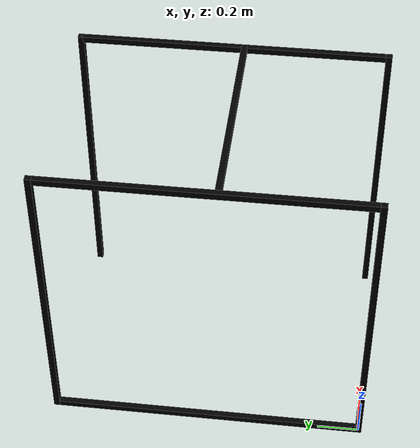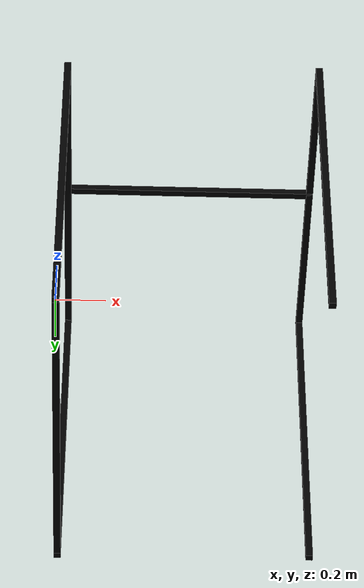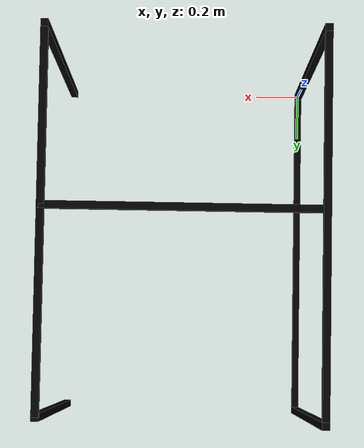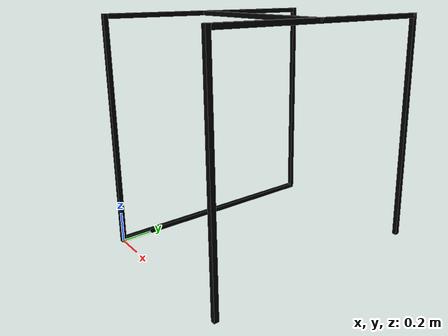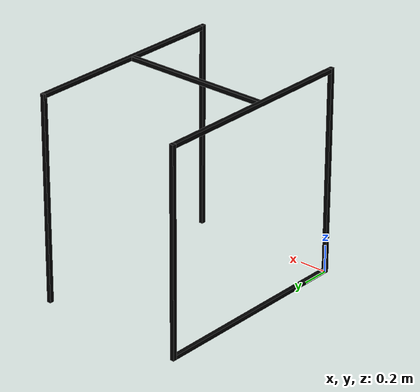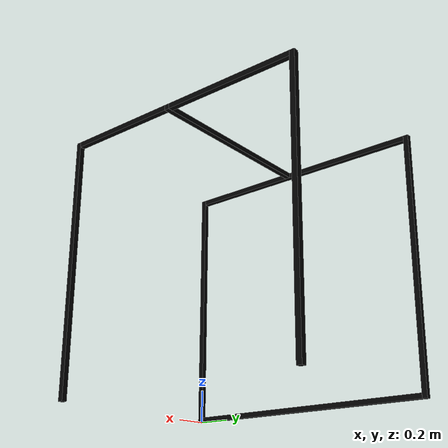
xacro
<?xml version="1.0"?>
<robot xmlns:xacro="http://www.ros.org/wiki/xacro">

  <!-- Material Definition -->
  <material name="yellow">
    <color rgba="1 1 0 1"/>
  </material>

  <material name="black">
    <color rgba="0 0 0 1"/>
  </material>

  <link name="world">
  </link>

  <link name="base_link">
    <origin xyz="0 0 0" rpy="0 0 0"/>
    <visual>
      <geometry>
        <box size="0.03 1.5 0.03"/>
      </geometry>
      <material name="black"/>
    </visual>
    <collision>
      <geometry>
        <box size="0.03 1.5 0.03"/>
      </geometry>
    </collision>
    <inertial>
      <mass value="0.5"/>
      <origin xyz="0 0 0" rpy="0 0 0"/>
      <inertia ixx="0.0937875" ixy="0" ixz="0" iyy="0.000075" iyz="0" izz="0.0937875"/>
    </inertial>
  </link>

  <link name="link1">
    <origin xyz="0 0 0" rpy="0 0 0"/>
    <visual>
      <geometry>
        <box size="0.03 0.03 1.5"/>
      </geometry>
      <material name="black"/>
    </visual>
    <collision>
      <geometry>
        <box size="0.03 0.03 1.5"/>
      </geometry>
    </collision>
    <inertial>
      <mass value="0.5"/>
      <origin rpy="0 0 0" xyz="0 0 0"/>
      <inertia ixx="0.0937875" ixy="0" ixz="0" iyy="0.0937875" iyz="0" izz="0.000075"/>
    </inertial>
  </link>

  <link name="link2">
    <origin xyz="0 0 0" rpy="0 0 0"/>
    <visual>
      <geometry>
        <box size="0.03 0.03 1.5"/>
      </geometry>
      <material name="black"/>
    </visual>
    <collision>
      <geometry>
        <box size="0.03 0.03 1.5"/>
      </geometry>
    </collision>
    <inertial>
      <mass value="0.5"/>
      <origin rpy="0 0 0" xyz="0 0 0"/>
      <inertia ixx="0.0937875" ixy="0" ixz="0" iyy="0.0937875" iyz="0" izz="0.000075"/>
    </inertial>
  </link>

  <link name="link3">
    <origin xyz="0 0 0" rpy="0 0 0"/>
    <visual>
      <geometry>
        <box size="0.03 0.03 1.5"/>
      </geometry>
      <material name="black"/>
    </visual>
    <collision>
      <geometry>
        <box size="0.03 0.03 1.5"/>
      </geometry>
    </collision>
    <inertial>
      <mass value="0.5"/>
      <origin rpy="0 0 0" xyz="0 0 0"/>
      <inertia ixx="0.0937875" ixy="0" ixz="0" iyy="0.0937875" iyz="0" izz="0.000075"/>
    </inertial>
  </link>

  <link name="link4">
    <origin xyz="0 0 0" rpy="0 0 0"/>
    <visual>
      <geometry>
        <box size="0.03 0.03 1.5"/>
      </geometry>
      <material name="black"/>
    </visual>
    <collision>
      <geometry>
        <box size="0.03 0.03 1.5"/>
      </geometry>
    </collision>
    <inertial>
      <mass value="0.5"/>
      <origin rpy="0 0 0" xyz="0 0 0"/>
      <inertia ixx="0.0937875" ixy="0" ixz="0" iyy="0.0937875" iyz="0" izz="0.000075"/>
    </inertial>
  </link>

  <link name="link5">
    <origin xyz="0 0 0" rpy="0 0 0"/>
    <visual>
      <geometry>
        <box size="0.03 1.5 0.03"/>
      </geometry>
      <material name="black"/>
    </visual>
    <collision>
      <geometry>
        <box size="0.03 1.5 0.03"/>
      </geometry>
    </collision>
    <inertial>
      <mass value="0.5"/>
      <origin rpy="0 0 0" xyz="0 0 0"/>
      <inertia ixx="0.000075" ixy="0" ixz="0" iyy="0.0937875" iyz="0" izz="0.0937875"/>
    </inertial>
  </link>

  <link name="link6">
    <origin xyz="0 0 0" rpy="0 0 0"/>
    <visual>
      <geometry>
        <box size="0.03 1.5 0.03"/>
      </geometry>
      <material name="black"/>
    </visual>
    <collision>
      <geometry>
        <box size="0.03 1.5 0.03"/>
      </geometry>
    </collision>
    <inertial>
      <mass value="0.5"/>
      <origin rpy="0 0 0" xyz="0 0 0"/>
      <inertia ixx="0.000075" ixy="0" ixz="0" iyy="0.0937875" iyz="0" izz="0.0937875"/>
    </inertial>
  </link>

  <link name="link7">
    <origin xyz="0 0 0" rpy="0 0 0"/>
    <visual>
      <geometry>
        <box size="1.1 0.03 0.03"/>
      </geometry>
      <material name="black"/>
    </visual>
    <collision>
      <geometry>
        <box size="0.03 1.5 0.03"/>
      </geometry>
    </collision>
    <inertial>
      <mass value="0.5"/>
      <origin rpy="0 0 0" xyz="0 0 0"/>
      <inertia ixx="0.05045416667" ixy="0" ixz="0" iyy="0.05045416667" iyz="0" izz="0.000075"/>
    </inertial>
  </link>

  <!-- Joints  -->
  <joint name="joint_0" type="fixed">
      <origin xyz="0 0.765 0.015" rpy="0 0 0"/>
      <parent link="world"/>
      <child link="base_link"/>
  </joint>

  <joint name="joint_1" type="fixed">
      <origin xyz="0 -0.765 0.735" rpy="0 0 0"/>
      <parent link="base_link"/>
      <child link="link1"/>
  </joint>

  <joint name="joint_2" type="fixed">
      <origin xyz="0 0.765 0.735" rpy="0 0 0"/>
      <parent link="base_link"/>
      <child link="link2"/>
  </joint>

  <joint name="joint_3" type="fixed">
      <origin xyz="1.1 0 0.75" rpy="0 0 0"/>
      <parent link="world"/>
      <child link="link3"/>
  </joint>

  <joint name="joint_4" type="fixed">
      <origin xyz="1.1 1.515 0.75" rpy="0 0 0"/>
      <parent link="world"/>
      <child link="link4"/>
  </joint>

  <joint name="joint_5" type="fixed">
      <origin xyz="0 0.765 0.735" rpy="0 0 0"/>
      <parent link="link1"/>
      <child link="link5"/>
  </joint>

  <joint name="joint_6" type="fixed">
      <origin xyz="0 0.765 0.735" rpy="0 0 0"/>
      <parent link="link3"/>
      <child link="link6"/>
  </joint>

  <joint name="joint_7" type="fixed">
      <origin xyz="0.565 -0.06 0" rpy="0 0 0"/>
      <parent link="link5"/>
      <child link="link7"/>
  </joint>

</robot>
